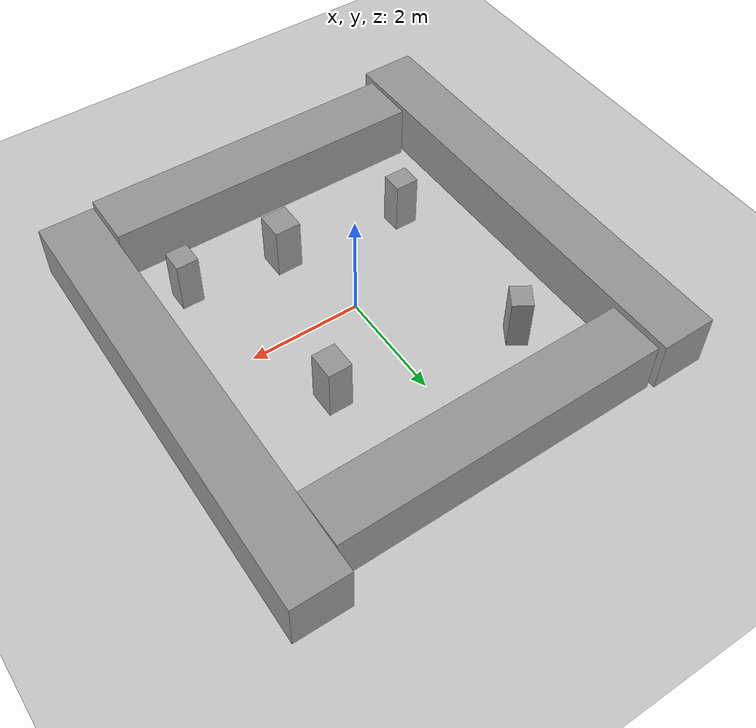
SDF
<sdf version="1.6">
 <world name="default">
  <physics name="default_physics" default="0" type="ode">
   <ode>
    <solver>
     <type>quick</type>
     <iters>20</iters>
     <sor>1</sor>
     <use_dynamic_moi_rescaling>0</use_dynamic_moi_rescaling>
    </solver>
    <constraints>
     <cfm>0</cfm>
     <erp>0.2</erp>
     <contact_max_correcting_vel>100</contact_max_correcting_vel>
     <contact_surface_layer>0</contact_surface_layer>
    </constraints>
   </ode>
   <max_step_size>0.001</max_step_size>
   <real_time_factor>1</real_time_factor>
   <real_time_update_rate>1000</real_time_update_rate>
  </physics>
  <light name="sun" type="directional">
   <pose>0 0 10 0 -0 0</pose>
   <diffuse>0.8 0.8 0.8 1</diffuse>
   <specular>0.2 0.2 0.2 1</specular>
   <attenuation>
    <range>1000</range>
    <constant>0.9</constant>
    <linear>0.01</linear>
    <quadratic>0.001</quadratic>
   </attenuation>
   <direction>-0.5 0.1 -0.9</direction>
  </light>
  <model name="ground_plane">
   <static>1</static>
   <link name="link">
    <collision name="collision">
     <geometry><plane><normal>0 0 1</normal><size>100 100</size></plane></geometry>
     <surface>
      <contact><collide_bitmask>65535</collide_bitmask></contact>
      <friction><ode><mu>100</mu><mu2>50</mu2></ode></friction>
     </surface>
    </collision>
    <visual name="visual">
     <cast_shadows>0</cast_shadows>
     <geometry><plane><normal>0 0 1</normal><size>100 100</size></plane></geometry>
     <material>
      <script><uri>file://media/materials/scripts/gazebo.material</uri><name>Gazebo/Grey</name></script>
     </material>
    </visual>
   </link>
  </model>
  <gravity>0 0 -9.8</gravity>
  <magnetic_field>6e-06 2.3e-05 -4.2e-05</magnetic_field>
  <atmosphere type="adiabatic"/>
  <scene><ambient>0.4 0.4 0.4 1</ambient><background>0.7 0.7 0.7 1</background><shadows>1</shadows></scene>
  <audio><device>default</device></audio>
  <spherical_coordinates>
   <surface_model>EARTH_WGS84</surface_model>
   <latitude_deg>0</latitude_deg>
   <longitude_deg>0</longitude_deg>
   <elevation>0</elevation>
   <heading_deg>0</heading_deg>
  </spherical_coordinates>
  <model name="unit_box10">
   <link name="link">
    <inertial>
     <mass>10000</mass>
     <inertia><ixx>55334.9</ixx><ixy>0</ixy><ixz>0</ixz><iyy>1666.67</iyy><iyz>0</iyz><izz>55334.9</izz></inertia>
    </inertial>
    <visual name="visual">
     <geometry><box><size>1 8.08714 1</size></box></geometry>
     <material>
      <script><name>Gazebo/Grey</name><uri>file://media/materials/scripts/gazebo.material</uri></script>
      <shader type="vertex"><normal_map>__default__</normal_map></shader>
     </material>
    </visual>
    <collision name="collision">
     <geometry><box><size>1 8.08714 1</size></box></geometry>
     <surface>
      <friction>
       <ode><mu>1</mu><mu2>1</mu2><fdir1>0 0 0</fdir1><slip1>0</slip1><slip2>0</slip2></ode>
       <torsional>
        <coefficient>1</coefficient>
        <patch_radius>0</patch_radius>
        <surface_radius>0</surface_radius>
        <use_patch_radius>1</use_patch_radius>
        <ode><slip>0</slip></ode>
       </torsional>
      </friction>
      <bounce><restitution_coefficient>0</restitution_coefficient><threshold>1e+06</threshold></bounce>
      <contact>
       <collide_without_contact>0</collide_without_contact>
       <collide_without_contact_bitmask>1</collide_without_contact_bitmask>
       <collide_bitmask>1</collide_bitmask>
       <ode>
        <soft_cfm>0</soft_cfm>
        <soft_erp>0.2</soft_erp>
        <kp>1e+13</kp>
        <kd>1</kd>
        <max_vel>0.01</max_vel>
        <min_depth>0</min_depth>
       </ode>
       <bullet>
        <split_impulse>1</split_impulse>
        <split_impulse_penetration_threshold>-0.01</split_impulse_penetration_threshold>
        <soft_cfm>0</soft_cfm>
        <soft_erp>0.2</soft_erp>
        <kp>1e+13</kp>
        <kd>1</kd>
       </bullet>
      </contact>
     </surface>
    </collision>
   </link>
   <static>0</static>
   <pose>-3.47155 0.013703 0.5 0 -1e-06 0.005771</pose>
  </model>
  <model name="unit_box10_clone">
   <link name="link">
    <inertial>
     <mass>10000</mass>
     <inertia><ixx>55334.9</ixx><ixy>0</ixy><ixz>0</ixz><iyy>1666.67</iyy><iyz>0</iyz><izz>55334.9</izz></inertia>
    </inertial>
    <visual name="visual">
     <geometry><box><size>1 8.08714 1</size></box></geometry>
     <material>
      <script><name>Gazebo/Grey</name><uri>file://media/materials/scripts/gazebo.material</uri></script>
      <shader type="vertex"><normal_map>__default__</normal_map></shader>
     </material>
    </visual>
    <collision name="collision">
     <geometry><box><size>1 8.08714 1</size></box></geometry>
     <surface>
      <friction>
       <ode><mu>1</mu><mu2>1</mu2><fdir1>0 0 0</fdir1><slip1>0</slip1><slip2>0</slip2></ode>
       <torsional>
        <coefficient>1</coefficient>
        <patch_radius>0</patch_radius>
        <surface_radius>0</surface_radius>
        <use_patch_radius>1</use_patch_radius>
        <ode><slip>0</slip></ode>
       </torsional>
      </friction>
      <bounce><restitution_coefficient>0</restitution_coefficient><threshold>1e+06</threshold></bounce>
      <contact>
       <collide_without_contact>0</collide_without_contact>
       <collide_without_contact_bitmask>1</collide_without_contact_bitmask>
       <collide_bitmask>1</collide_bitmask>
       <ode>
        <soft_cfm>0</soft_cfm>
        <soft_erp>0.2</soft_erp>
        <kp>1e+13</kp>
        <kd>1</kd>
        <max_vel>0.01</max_vel>
        <min_depth>0</min_depth>
       </ode>
       <bullet>
        <split_impulse>1</split_impulse>
        <split_impulse_penetration_threshold>-0.01</split_impulse_penetration_threshold>
        <soft_cfm>0</soft_cfm>
        <soft_erp>0.2</soft_erp>
        <kp>1e+13</kp>
        <kd>1</kd>
       </bullet>
      </contact>
     </surface>
    </collision>
   </link>
   <static>0</static>
   <pose>3.47525 0.422288 0.5 0 0 -0.010785</pose>
  </model>
  <model name="unit_box10_clone_0">
   <link name="link">
    <inertial>
     <mass>10000</mass>
     <inertia><ixx>55334.9</ixx><ixy>0</ixy><ixz>0</ixz><iyy>1666.67</iyy><iyz>0</iyz><izz>55334.9</izz></inertia>
    </inertial>
    <visual name="visual">
     <geometry><box><size>1 5.77705 1</size></box></geometry>
     <material>
      <script><name>Gazebo/Grey</name><uri>file://media/materials/scripts/gazebo.material</uri></script>
      <shader type="vertex"><normal_map>__default__</normal_map></shader>
     </material>
    </visual>
    <collision name="collision">
     <geometry><box><size>1 5.77705 1</size></box></geometry>
     <surface>
      <friction>
       <ode><mu>1</mu><mu2>1</mu2><fdir1>0 0 0</fdir1><slip1>0</slip1><slip2>0</slip2></ode>
       <torsional>
        <coefficient>1</coefficient>
        <patch_radius>0</patch_radius>
        <surface_radius>0</surface_radius>
        <use_patch_radius>1</use_patch_radius>
        <ode><slip>0</slip></ode>
       </torsional>
      </friction>
      <bounce><restitution_coefficient>0</restitution_coefficient><threshold>1e+06</threshold></bounce>
      <contact>
       <collide_without_contact>0</collide_without_contact>
       <collide_without_contact_bitmask>1</collide_without_contact_bitmask>
       <collide_bitmask>1</collide_bitmask>
       <ode>
        <soft_cfm>0</soft_cfm>
        <soft_erp>0.2</soft_erp>
        <kp>1e+13</kp>
        <kd>1</kd>
        <max_vel>0.01</max_vel>
        <min_depth>0</min_depth>
       </ode>
       <bullet>
        <split_impulse>1</split_impulse>
        <split_impulse_penetration_threshold>-0.01</split_impulse_penetration_threshold>
        <soft_cfm>0</soft_cfm>
        <soft_erp>0.2</soft_erp>
        <kp>1e+13</kp>
        <kd>1</kd>
       </bullet>
      </contact>
     </surface>
    </collision>
   </link>
   <static>0</static>
   <pose>-0.002288 -3.24072 0.499996 0 8e-06 -1.57639</pose>
  </model>
  <model name="unit_box10_clone_0_clone">
   <link name="link">
    <inertial>
     <mass>10000</mass>
     <inertia><ixx>55334.9</ixx><ixy>0</ixy><ixz>0</ixz><iyy>1666.67</iyy><iyz>0</iyz><izz>55334.9</izz></inertia>
    </inertial>
    <visual name="visual">
     <geometry><box><size>1 5.89829 1</size></box></geometry>
     <material>
      <script><name>Gazebo/Grey</name><uri>file://media/materials/scripts/gazebo.material</uri></script>
      <shader type="vertex"><normal_map>__default__</normal_map></shader>
     </material>
    </visual>
    <collision name="collision">
     <geometry><box><size>1 5.89829 1</size></box></geometry>
     <surface>
      <friction>
       <ode><mu>1</mu><mu2>1</mu2><fdir1>0 0 0</fdir1><slip1>0</slip1><slip2>0</slip2></ode>
       <torsional>
        <coefficient>1</coefficient>
        <patch_radius>0</patch_radius>
        <surface_radius>0</surface_radius>
        <use_patch_radius>1</use_patch_radius>
        <ode><slip>0</slip></ode>
       </torsional>
      </friction>
      <bounce><restitution_coefficient>0</restitution_coefficient><threshold>1e+06</threshold></bounce>
      <contact>
       <collide_without_contact>0</collide_without_contact>
       <collide_without_contact_bitmask>1</collide_without_contact_bitmask>
       <collide_bitmask>1</collide_bitmask>
       <ode>
        <soft_cfm>0</soft_cfm>
        <soft_erp>0.2</soft_erp>
        <kp>1e+13</kp>
        <kd>1</kd>
        <max_vel>0.01</max_vel>
        <min_depth>0</min_depth>
       </ode>
       <bullet>
        <split_impulse>1</split_impulse>
        <split_impulse_penetration_threshold>-0.01</split_impulse_penetration_threshold>
        <soft_cfm>0</soft_cfm>
        <soft_erp>0.2</soft_erp>
        <kp>1e+13</kp>
        <kd>1</kd>
       </bullet>
      </contact>
     </surface>
    </collision>
   </link>
   <static>0</static>
   <pose>0.050957 3.51405 0.5 0 1e-06 -1.56443</pose>
  </model>
  <model name="unit_box20">
   <link name="link">
    <inertial>
     <mass>10000</mass>
     <inertia><ixx>1134.56</ixx><ixy>0</ixy><ixz>0</ixz><iyy>1101.2</iyy><iyz>0</iyz><izz>569.092</izz></inertia>
    </inertial>
    <visual name="visual">
     <geometry><box><size>0.422769 0.491597 1</size></box></geometry>
     <material>
      <script><name>Gazebo/Grey</name><uri>file://media/materials/scripts/gazebo.material</uri></script>
      <shader type="vertex"><normal_map>__default__</normal_map></shader>
     </material>
    </visual>
    <collision name="collision">
     <geometry><box><size>0.422769 0.491597 1</size></box></geometry>
     <surface>
      <friction>
       <ode><mu>1</mu><mu2>1</mu2><fdir1>0 0 0</fdir1><slip1>0</slip1><slip2>0</slip2></ode>
       <torsional>
        <coefficient>1</coefficient>
        <patch_radius>0</patch_radius>
        <surface_radius>0</surface_radius>
        <use_patch_radius>1</use_patch_radius>
        <ode><slip>0</slip></ode>
       </torsional>
      </friction>
      <bounce><restitution_coefficient>0</restitution_coefficient><threshold>1e+06</threshold></bounce>
      <contact>
       <collide_without_contact>0</collide_without_contact>
       <collide_without_contact_bitmask>1</collide_without_contact_bitmask>
       <collide_bitmask>1</collide_bitmask>
       <ode>
        <soft_cfm>0</soft_cfm>
        <soft_erp>0.2</soft_erp>
        <kp>1e+13</kp>
        <kd>1</kd>
        <max_vel>0.01</max_vel>
        <min_depth>0</min_depth>
       </ode>
       <bullet>
        <split_impulse>1</split_impulse>
        <split_impulse_penetration_threshold>-0.01</split_impulse_penetration_threshold>
        <soft_cfm>0</soft_cfm>
        <soft_erp>0.2</soft_erp>
        <kp>1e+13</kp>
        <kd>1</kd>
       </bullet>
      </contact>
     </surface>
    </collision>
   </link>
   <static>0</static>
   <pose>1.35567 1.38475 0.499999 4e-06 -0 -0.001567</pose>
  </model>
  <model name="unit_box20_clone">
   <link name="link">
    <inertial>
     <mass>10000</mass>
     <inertia><ixx>1134.56</ixx><ixy>0</ixy><ixz>0</ixz><iyy>1101.2</iyy><iyz>0</iyz><izz>569.092</izz></inertia>
    </inertial>
    <visual name="visual">
     <geometry><box><size>0.466451 0.492274 1</size></box></geometry>
     <material>
      <script><name>Gazebo/Grey</name><uri>file://media/materials/scripts/gazebo.material</uri></script>
      <shader type="vertex"><normal_map>__default__</normal_map></shader>
     </material>
    </visual>
    <collision name="collision">
     <geometry><box><size>0.466451 0.492274 1</size></box></geometry>
     <surface>
      <friction>
       <ode><mu>1</mu><mu2>1</mu2><fdir1>0 0 0</fdir1><slip1>0</slip1><slip2>0</slip2></ode>
       <torsional>
        <coefficient>1</coefficient>
        <patch_radius>0</patch_radius>
        <surface_radius>0</surface_radius>
        <use_patch_radius>1</use_patch_radius>
        <ode><slip>0</slip></ode>
       </torsional>
      </friction>
      <bounce><restitution_coefficient>0</restitution_coefficient><threshold>1e+06</threshold></bounce>
      <contact>
       <collide_without_contact>0</collide_without_contact>
       <collide_without_contact_bitmask>1</collide_without_contact_bitmask>
       <collide_bitmask>1</collide_bitmask>
       <ode>
        <soft_cfm>0</soft_cfm>
        <soft_erp>0.2</soft_erp>
        <kp>1e+13</kp>
        <kd>1</kd>
        <max_vel>0.01</max_vel>
        <min_depth>0</min_depth>
       </ode>
       <bullet>
        <split_impulse>1</split_impulse>
        <split_impulse_penetration_threshold>-0.01</split_impulse_penetration_threshold>
        <soft_cfm>0</soft_cfm>
        <soft_erp>0.2</soft_erp>
        <kp>1e+13</kp>
        <kd>1</kd>
       </bullet>
      </contact>
     </surface>
    </collision>
   </link>
   <static>0</static>
   <pose>0.456082 -1.57548 0.5 0 0 -0.001529</pose>
  </model>
  <model name="unit_box20_clone_0">
   <link name="link">
    <inertial>
     <mass>10000</mass>
     <inertia><ixx>1134.56</ixx><ixy>0</ixy><ixz>0</ixz><iyy>1101.2</iyy><iyz>0</iyz><izz>569.092</izz></inertia>
    </inertial>
    <visual name="visual">
     <geometry><box><size>0.393796 0.405213 1</size></box></geometry>
     <material>
      <script><name>Gazebo/Grey</name><uri>file://media/materials/scripts/gazebo.material</uri></script>
      <shader type="vertex"><normal_map>__default__</normal_map></shader>
     </material>
    </visual>
    <collision name="collision">
     <geometry><box><size>0.393796 0.405213 1</size></box></geometry>
     <surface>
      <friction>
       <ode><mu>1</mu><mu2>1</mu2><fdir1>0 0 0</fdir1><slip1>0</slip1><slip2>0</slip2></ode>
       <torsional>
        <coefficient>1</coefficient>
        <patch_radius>0</patch_radius>
        <surface_radius>0</surface_radius>
        <use_patch_radius>1</use_patch_radius>
        <ode><slip>0</slip></ode>
       </torsional>
      </friction>
      <bounce><restitution_coefficient>0</restitution_coefficient><threshold>1e+06</threshold></bounce>
      <contact>
       <collide_without_contact>0</collide_without_contact>
       <collide_without_contact_bitmask>1</collide_without_contact_bitmask>
       <collide_bitmask>1</collide_bitmask>
       <ode>
        <soft_cfm>0</soft_cfm>
        <soft_erp>0.2</soft_erp>
        <kp>1e+13</kp>
        <kd>1</kd>
        <max_vel>0.01</max_vel>
        <min_depth>0</min_depth>
       </ode>
       <bullet>
        <split_impulse>1</split_impulse>
        <split_impulse_penetration_threshold>-0.01</split_impulse_penetration_threshold>
        <soft_cfm>0</soft_cfm>
        <soft_erp>0.2</soft_erp>
        <kp>1e+13</kp>
        <kd>1</kd>
       </bullet>
      </contact>
     </surface>
    </collision>
   </link>
   <static>0</static>
   <pose>2.22478 -1.77934 0.5 0 0 -0.001557</pose>
  </model>
  <model name="unit_box20_clone_1">
   <link name="link">
    <inertial>
     <mass>10000</mass>
     <inertia><ixx>1134.56</ixx><ixy>0</ixy><ixz>0</ixz><iyy>1101.2</iyy><iyz>0</iyz><izz>569.092</izz></inertia>
    </inertial>
    <visual name="visual">
     <geometry><box><size>0.422769 0.377755 1</size></box></geometry>
     <material>
      <script><name>Gazebo/Grey</name><uri>file://media/materials/scripts/gazebo.material</uri></script>
      <shader type="vertex"><normal_map>__default__</normal_map></shader>
     </material>
    </visual>
    <collision name="collision">
     <geometry><box><size>0.422769 0.377755 1</size></box></geometry>
     <surface>
      <friction>
       <ode><mu>1</mu><mu2>1</mu2><fdir1>0 0 0</fdir1><slip1>0</slip1><slip2>0</slip2></ode>
       <torsional>
        <coefficient>1</coefficient>
        <patch_radius>0</patch_radius>
        <surface_radius>0</surface_radius>
        <use_patch_radius>1</use_patch_radius>
        <ode><slip>0</slip></ode>
       </torsional>
      </friction>
      <bounce><restitution_coefficient>0</restitution_coefficient><threshold>1e+06</threshold></bounce>
      <contact>
       <collide_without_contact>0</collide_without_contact>
       <collide_without_contact_bitmask>1</collide_without_contact_bitmask>
       <collide_bitmask>1</collide_bitmask>
       <ode>
        <soft_cfm>0</soft_cfm>
        <soft_erp>0.2</soft_erp>
        <kp>1e+13</kp>
        <kd>1</kd>
        <max_vel>0.01</max_vel>
        <min_depth>0</min_depth>
       </ode>
       <bullet>
        <split_impulse>1</split_impulse>
        <split_impulse_penetration_threshold>-0.01</split_impulse_penetration_threshold>
        <soft_cfm>0</soft_cfm>
        <soft_erp>0.2</soft_erp>
        <kp>1e+13</kp>
        <kd>1</kd>
       </bullet>
      </contact>
     </surface>
    </collision>
   </link>
   <static>0</static>
   <pose>-1.82909 -1.28064 0.499999 0 -4e-06 -0.001512</pose>
  </model>
  <model name="unit_box20_clone_2">
   <link name="link">
    <inertial>
     <mass>10000</mass>
     <inertia><ixx>1134.56</ixx><ixy>0</ixy><ixz>0</ixz><iyy>1101.2</iyy><iyz>0</iyz><izz>569.092</izz></inertia>
    </inertial>
    <visual name="visual">
     <geometry><box><size>0.422769 0.361169 1</size></box></geometry>
     <material>
      <script><name>Gazebo/Grey</name><uri>file://media/materials/scripts/gazebo.material</uri></script>
      <shader type="vertex"><normal_map>__default__</normal_map></shader>
     </material>
    </visual>
    <collision name="collision">
     <geometry><box><size>0.422769 0.361169 1</size></box></geometry>
     <surface>
      <friction>
       <ode><mu>1</mu><mu2>1</mu2><fdir1>0 0 0</fdir1><slip1>0</slip1><slip2>0</slip2></ode>
       <torsional>
        <coefficient>1</coefficient>
        <patch_radius>0</patch_radius>
        <surface_radius>0</surface_radius>
        <use_patch_radius>1</use_patch_radius>
        <ode><slip>0</slip></ode>
       </torsional>
      </friction>
      <bounce><restitution_coefficient>0</restitution_coefficient><threshold>1e+06</threshold></bounce>
      <contact>
       <collide_without_contact>0</collide_without_contact>
       <collide_without_contact_bitmask>1</collide_without_contact_bitmask>
       <collide_bitmask>1</collide_bitmask>
       <ode>
        <soft_cfm>0</soft_cfm>
        <soft_erp>0.2</soft_erp>
        <kp>1e+13</kp>
        <kd>1</kd>
        <max_vel>0.01</max_vel>
        <min_depth>0</min_depth>
       </ode>
       <bullet>
        <split_impulse>1</split_impulse>
        <split_impulse_penetration_threshold>-0.01</split_impulse_penetration_threshold>
        <soft_cfm>0</soft_cfm>
        <soft_erp>0.2</soft_erp>
        <kp>1e+13</kp>
        <kd>1</kd>
       </bullet>
      </contact>
     </surface>
    </collision>
   </link>
   <static>0</static>
   <pose>-1.84345 1.99693 0.499999 -3e-06 -0 -2.14363</pose>
  </model>
 </world>
</sdf>
